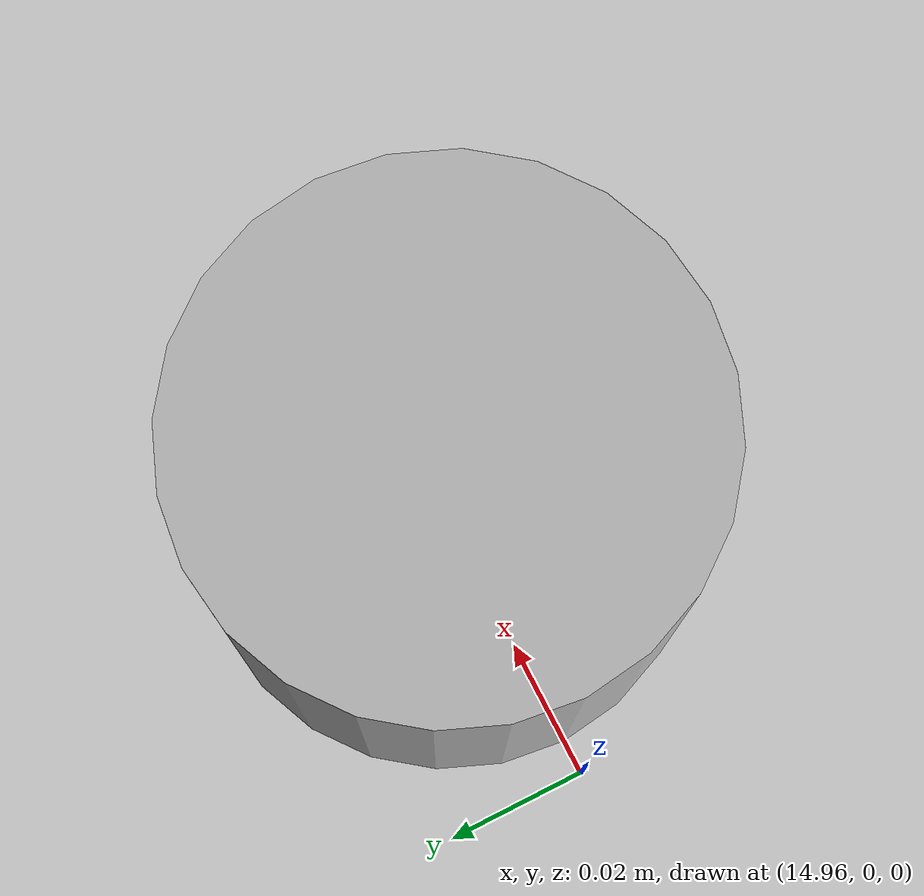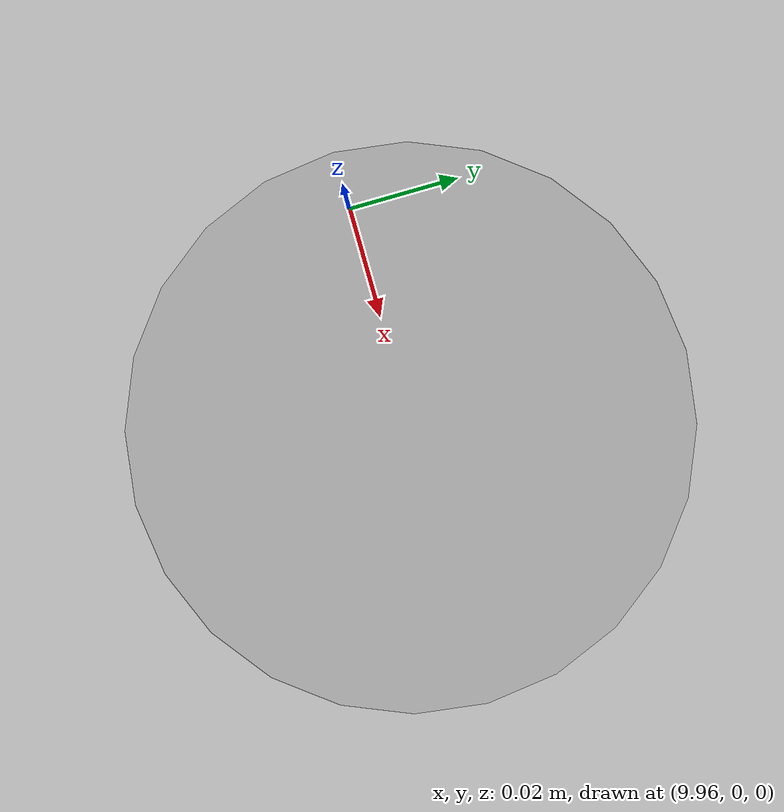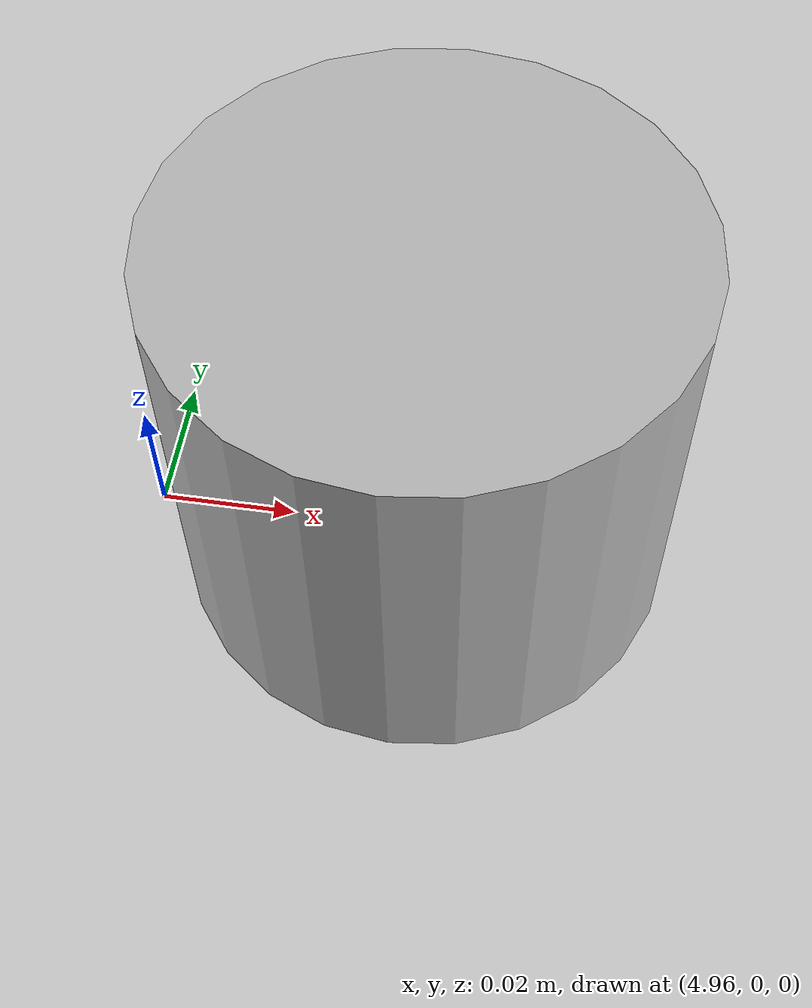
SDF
<?xml version="1.0"?>
<sdf version="1.5">
  <world name="default">
    <include>
      <uri>model://ground_plane</uri>
    </include>

    <include>
      <uri>model://sun</uri>
    </include>

    <plugin name="SimEvents" filename="libSimEventsPlugin.so">

    <session></session>

    <region>
      <name>start</name>
      <volume>
          <!-- min and max are ignition::math::Vector3d -->
          <!-- around the origin -->
          <min>-3 -3 -3</min>
          <max>3 3 3</max>
     </volume>
    </region>

    <region>
      <name>end</name>
      <volume>
        <!-- around 10,10  -->
        <min>7 7 0</min>
        <max>13 13 3</max>
      </volume>
    </region>

    <event>
      <name>NewBeer</name>
      <type>existence</type>
      <model>beer</model>
    </event>

    <event>
      <name>Inactive</name>
      <type>sim_state</type>
      <!-- elements can be active or not,
      and this property can be set at runtime or in the world file
      with the active element
      by default, they are.
      -->
      <active>false</active>
    </event>

    <event>
      <name>All_spawn_and_delete</name>
      <type>existence</type>
      <!-- no model  is specified -->
    </event>

    <!-- when the simulation state changes (pause/play) -->
    <event>
      <name>Sim</name>
      <type>sim_state</type>
    </event>

    <!-- bounding box intersection event-->
    <event>
      <name>Can1_in_0_0</name>
      <type>inclusion</type>
      <model>can1</model>
      <region>start</region>
    </event>

    <!-- bounding box inclusion event -->
    <event>
      <name>Can1_in_10_10</name>
      <type>inclusion</type>
      <model>can1</model>
      <region>end</region>
    </event>
    </plugin>

    <!--
    spawn a few beers in the world (not coke cans, they have
    meshes that can't be loaded with all engines yet
    -->
    <include>
      <pose>0 0 0 0 0 0</pose>
      <name>can1</name>
      <uri>model://beer</uri>
    </include>

    <include>
      <pose>5 0 0 0 0 0</pose>
      <name>can2</name>
      <uri>model://beer</uri>
    </include>

    <include>
      <pose>10 0 0 0 0 0</pose>
      <uri>model://beer</uri>
      <name>can3</name>
    </include>

    <include>
      <pose>15 0 0 0 0 0</pose>
      <name>can4</name>
      <uri>model://beer</uri>
    </include>

  </world>
</sdf>

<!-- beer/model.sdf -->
<sdf version='1.4'>
  <model name="beer">
    <link name='link'>
      <pose>0 0 0 0 0 0</pose>
      <inertial>
        <mass>0.390</mass>
        <inertia>
          <ixx>0.00058</ixx>
          <ixy>0</ixy>
          <ixz>0</ixz>
          <iyy>0.00058</iyy>
          <iyz>0</iyz>
          <izz>0.00025</izz>
        </inertia>
      </inertial>
      <collision name='collision'>
        <geometry>
          <cylinder>
            <radius>0.03500</radius>
            <length>0.12000</length>
          </cylinder>
        </geometry>
      </collision>

      <visual name='visual'>
        <geometry>
          <cylinder>
            <radius>0.03500</radius>
            <length>0.12000</length>
          </cylinder>
        </geometry>

        <material>
          <script>
            <uri>model://beer/materials/scripts</uri>
            <uri>model://beer/materials/textures</uri>
            <name>Beer/Diffuse</name>
          </script>
        </material>
      </visual>
    </link>
  </model>
</sdf>
